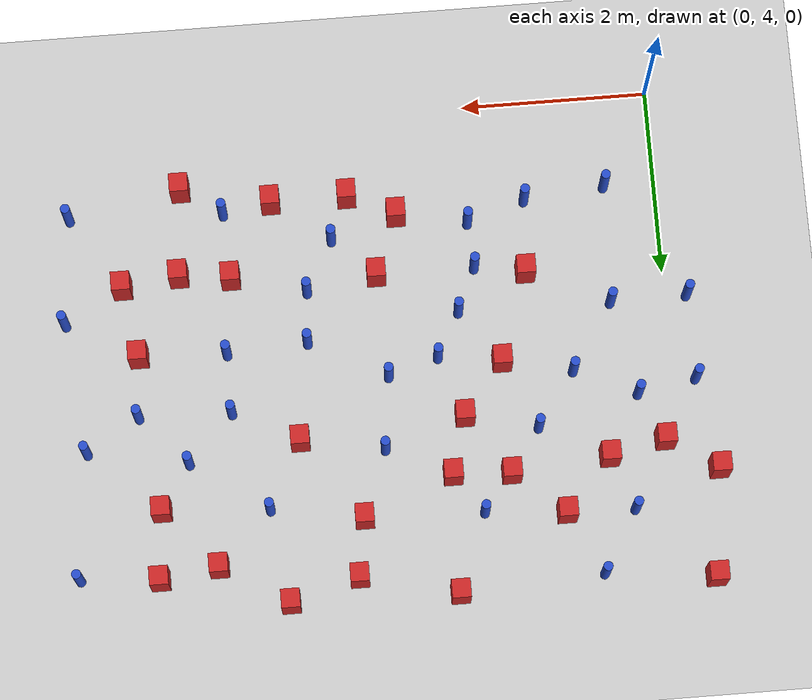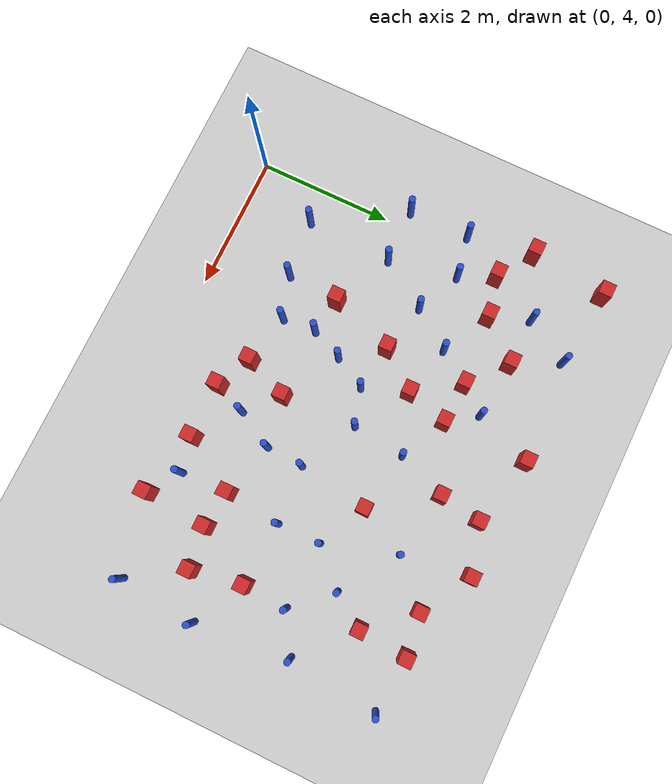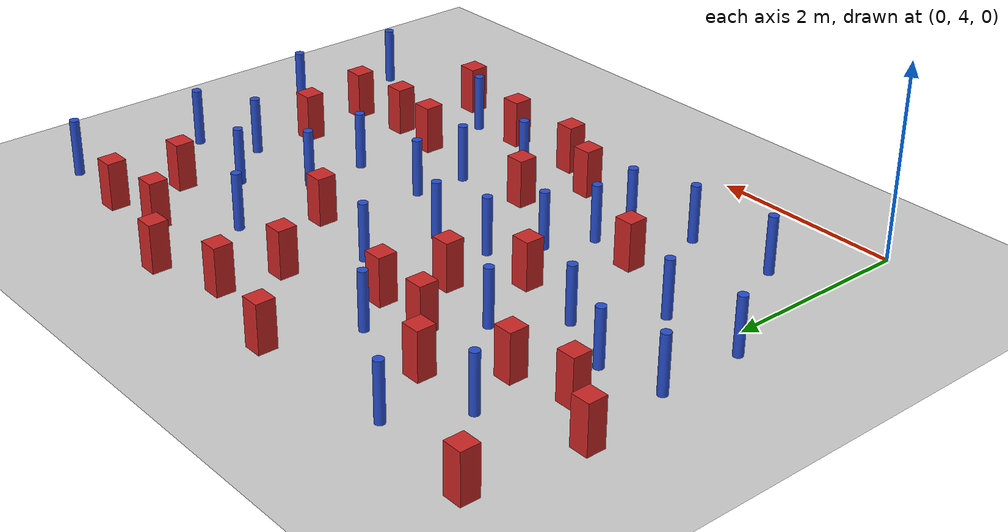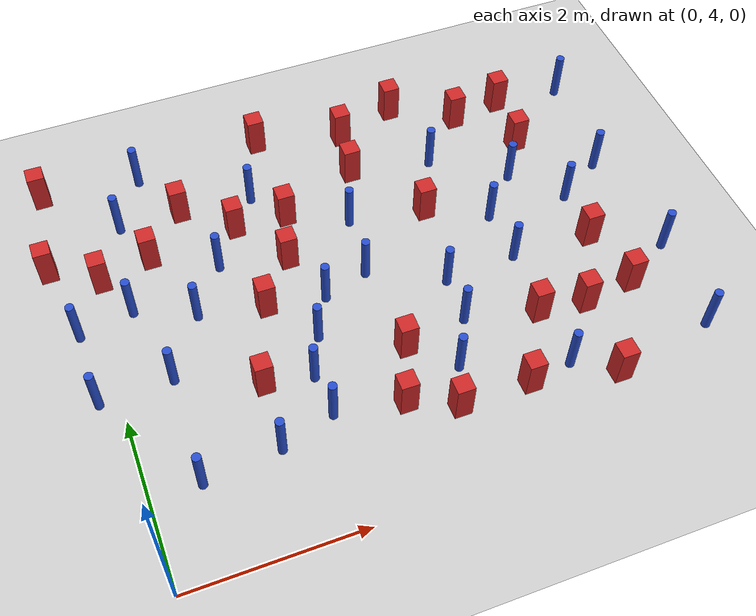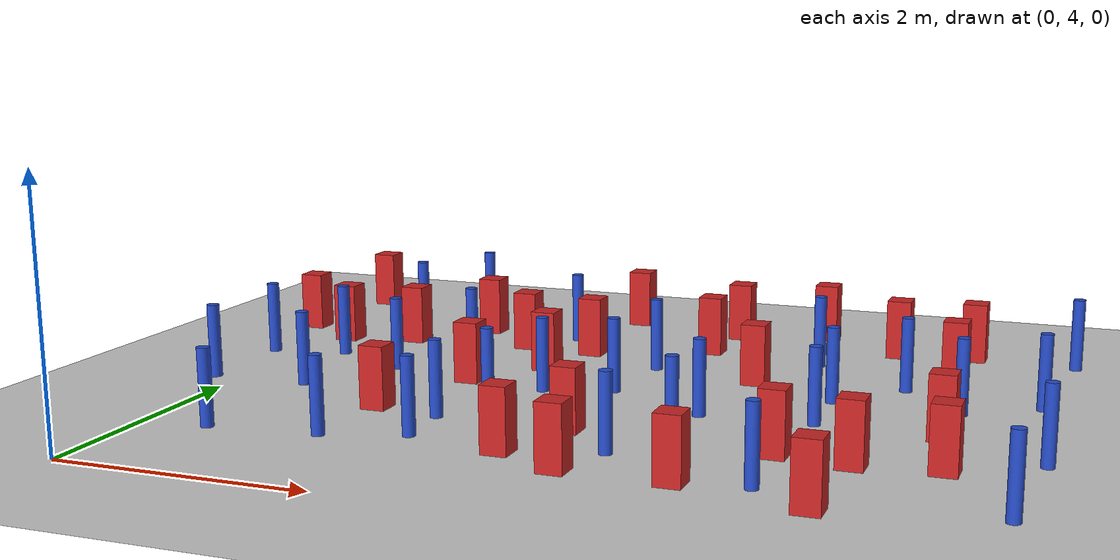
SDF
<sdf version="1.6">
 <world name="default">
  <model name="ground_plane">
   <static>1</static>
   <link name="link">
    <collision name="collision">
     <geometry><plane><normal>0 0 1</normal><size>100 100</size></plane></geometry>
     <surface><friction><ode><mu>100</mu><mu2>50</mu2></ode></friction></surface>
    </collision>
    <visual name="visual">
     <cast_shadows>0</cast_shadows>
     <geometry><plane><normal>0 0 1</normal><size>100 100</size></plane></geometry>
     <material>
      <ambient>1.0 1.0 1.0 1.0</ambient>
      <diffuse>0.8 0.8 0.8 1.0</diffuse>
      <specular>0.01 0.01 0.01 1.000000</specular>
     </material>
    </visual>
   </link>
  </model>
  <model name="pole_obstacle0">
   <static>true</static>
   <pose>-0.228434061934 6.29204529232 7.38925637345e-09 -8.47170692799e-08 1.2497676507e-08 -1.74513093018e-07</pose>
   <link name="link">
    <pose>0 0 0.3 0 -0 0</pose>
    <inertial>
     <mass>1</mass>
     <inertia><ixx>0.145833</ixx><ixy>0</ixy><ixz>0</ixz><iyy>0.145833</iyy><iyz>0</iyz><izz>0.125</izz></inertia>
    </inertial>
    <collision name="collision">
     <geometry><cylinder><radius>0.05</radius><length>.6</length></cylinder></geometry>
    </collision>
    <visual name="visual">
     <geometry><cylinder><radius>0.05</radius><length>.6</length></cylinder></geometry>
     <material>
      <script><name>Gazebo/Blue</name><uri>file://media/materials/scripts/gazebo.material</uri></script>
     </material>
    </visual>
   </link>
  </model>
  <model name="pole_obstacle6">
   <static>true</static>
   <pose>2.22442728239 6.29119405473 7.38925637345e-09 -8.47170692798e-08 1.24976765033e-08 -1.74513093019e-07</pose>
   <link name="link">
    <pose>0 0 0.3 0 -0 0</pose>
    <inertial>
     <mass>1</mass>
     <inertia><ixx>0.145833</ixx><ixy>0</ixy><ixz>0</ixz><iyy>0.145833</iyy><iyz>0</iyz><izz>0.125</izz></inertia>
    </inertial>
    <collision name="collision">
     <geometry><cylinder><radius>0.05</radius><length>.6</length></cylinder></geometry>
    </collision>
    <visual name="visual">
     <geometry><cylinder><radius>0.05</radius><length>.6</length></cylinder></geometry>
     <material>
      <script><name>Gazebo/Blue</name><uri>file://media/materials/scripts/gazebo.material</uri></script>
     </material>
    </visual>
   </link>
  </model>
  <model name="pole_obstacle7">
   <static>true</static>
   <pose>3.82240901728 5.94968930159 7.38925637345e-09 -8.47170692798e-08 1.24976765033e-08 -1.74513093019e-07</pose>
   <link name="link">
    <pose>0 0 0.3 0 -0 0</pose>
    <inertial>
     <mass>1</mass>
     <inertia><ixx>0.145833</ixx><ixy>0</ixy><ixz>0</ixz><iyy>0.145833</iyy><iyz>0</iyz><izz>0.125</izz></inertia>
    </inertial>
    <collision name="collision">
     <geometry><cylinder><radius>0.05</radius><length>.6</length></cylinder></geometry>
    </collision>
    <visual name="visual">
     <geometry><cylinder><radius>0.05</radius><length>.6</length></cylinder></geometry>
     <material>
      <script><name>Gazebo/Blue</name><uri>file://media/materials/scripts/gazebo.material</uri></script>
     </material>
    </visual>
   </link>
  </model>
  <model name="square_post_obstacle15">
   <static>true</static>
   <pose>3.4902615827 9.0665282632 1.91545236811e-07 -7.35059704564e-06 1.12565212e-07 2.39332434364e-05</pose>
   <link name="link">
    <pose>0 0 0.25 0 -0 0</pose>
    <inertial>
     <mass>100</mass>
     <inertia>
      <ixx>0.166667</ixx>
      <ixy>0</ixy>
      <ixz>0</ixz>
      <iyy>0.166667</iyy>
      <iyz>0</iyz>
      <izz>0.166667</izz>
     </inertia>
    </inertial>
    <collision name="collision"><geometry><box><size>.2 .2 .5</size></box></geometry></collision>
    <visual name="visual">
     <geometry><box><size>.2 .2 .5</size></box></geometry>
     <material>
      <script><name>Gazebo/Red</name><uri>file://media/materials/scripts/gazebo.material</uri></script>
     </material>
    </visual>
   </link>
  </model>
  <model name="pole_obstacle21">
   <static>true</static>
   <pose>5.19978586766 7.72300036047 7.38925637345e-09 -8.47170692796e-08 1.24976764786e-08 -1.74513093032e-07</pose>
   <link name="link">
    <pose>0 0 0.3 0 -0 0</pose>
    <inertial>
     <mass>1</mass>
     <inertia><ixx>0.145833</ixx><ixy>0</ixy><ixz>0</ixz><iyy>0.145833</iyy><iyz>0</iyz><izz>0.125</izz></inertia>
    </inertial>
    <collision name="collision">
     <geometry><cylinder><radius>0.05</radius><length>.6</length></cylinder></geometry>
    </collision>
    <visual name="visual">
     <geometry><cylinder><radius>0.05</radius><length>.6</length></cylinder></geometry>
     <material>
      <script><name>Gazebo/Blue</name><uri>file://media/materials/scripts/gazebo.material</uri></script>
     </material>
    </visual>
   </link>
  </model>
  <model name="pole_obstacle30">
   <static>true</static>
   <pose>6.32094249116 4.95644401113 7.38925637345e-09 -8.47170692796e-08 1.24976764786e-08 -1.74513093032e-07</pose>
   <link name="link">
    <pose>0 0 0.3 0 -0 0</pose>
    <inertial>
     <mass>1</mass>
     <inertia><ixx>0.145833</ixx><ixy>0</ixy><ixz>0</ixz><iyy>0.145833</iyy><iyz>0</iyz><izz>0.125</izz></inertia>
    </inertial>
    <collision name="collision">
     <geometry><cylinder><radius>0.05</radius><length>.6</length></cylinder></geometry>
    </collision>
    <visual name="visual">
     <geometry><cylinder><radius>0.05</radius><length>.6</length></cylinder></geometry>
     <material>
      <script><name>Gazebo/Blue</name><uri>file://media/materials/scripts/gazebo.material</uri></script>
     </material>
    </visual>
   </link>
  </model>
  <model name="square_post_obstacle23">
   <static>true</static>
   <pose>-0.246923038685 9.34110351262 1.91545236811e-07 -7.35059704564e-06 1.12565212e-07 2.39332434364e-05</pose>
   <link name="link">
    <pose>0 0 0.25 0 -0 0</pose>
    <inertial>
     <mass>100</mass>
     <inertia>
      <ixx>0.166667</ixx>
      <ixy>0</ixy>
      <ixz>0</ixz>
      <iyy>0.166667</iyy>
      <iyz>0</iyz>
      <izz>0.166667</izz>
     </inertia>
    </inertial>
    <collision name="collision"><geometry><box><size>.2 .2 .5</size></box></geometry></collision>
    <visual name="visual">
     <geometry><box><size>.2 .2 .5</size></box></geometry>
     <material>
      <script><name>Gazebo/Red</name><uri>file://media/materials/scripts/gazebo.material</uri></script>
     </material>
    </visual>
   </link>
  </model>
  <model name="square_post_obstacle27">
   <static>true</static>
   <pose>5.66125479805 6.52521181551 1.91545236811e-07 -7.35059704564e-06 1.12565212e-07 2.39332434364e-05</pose>
   <link name="link">
    <pose>0 0 0.25 0 -0 0</pose>
    <inertial>
     <mass>100</mass>
     <inertia>
      <ixx>0.166667</ixx>
      <ixy>0</ixy>
      <ixz>0</ixz>
      <iyy>0.166667</iyy>
      <iyz>0</iyz>
      <izz>0.166667</izz>
     </inertia>
    </inertial>
    <collision name="collision"><geometry><box><size>.2 .2 .5</size></box></geometry></collision>
    <visual name="visual">
     <geometry><box><size>.2 .2 .5</size></box></geometry>
     <material>
      <script><name>Gazebo/Red</name><uri>file://media/materials/scripts/gazebo.material</uri></script>
     </material>
    </visual>
   </link>
  </model>
  <model name="pole_obstacle33">
   <static>true</static>
   <pose>6.27313689731 7.53158005232 7.38925637345e-09 -8.47170692796e-08 1.24976764786e-08 -1.74513093032e-07</pose>
   <link name="link">
    <pose>0 0 0.3 0 -0 0</pose>
    <inertial>
     <mass>1</mass>
     <inertia><ixx>0.145833</ixx><ixy>0</ixy><ixz>0</ixz><iyy>0.145833</iyy><iyz>0</iyz><izz>0.125</izz></inertia>
    </inertial>
    <collision name="collision">
     <geometry><cylinder><radius>0.05</radius><length>.6</length></cylinder></geometry>
    </collision>
    <visual name="visual">
     <geometry><cylinder><radius>0.05</radius><length>.6</length></cylinder></geometry>
     <material>
      <script><name>Gazebo/Blue</name><uri>file://media/materials/scripts/gazebo.material</uri></script>
     </material>
    </visual>
   </link>
  </model>
  <model name="pole_obstacle37">
   <static>true</static>
   <pose>4.72249444627 6.56538603166 7.38925637345e-09 -8.47170692796e-08 1.24976764786e-08 -1.74513093032e-07</pose>
   <link name="link">
    <pose>0 0 0.3 0 -0 0</pose>
    <inertial>
     <mass>1</mass>
     <inertia><ixx>0.145833</ixx><ixy>0</ixy><ixz>0</ixz><iyy>0.145833</iyy><iyz>0</iyz><izz>0.125</izz></inertia>
    </inertial>
    <collision name="collision">
     <geometry><cylinder><radius>0.05</radius><length>.6</length></cylinder></geometry>
    </collision>
    <visual name="visual">
     <geometry><cylinder><radius>0.05</radius><length>.6</length></cylinder></geometry>
     <material>
      <script><name>Gazebo/Blue</name><uri>file://media/materials/scripts/gazebo.material</uri></script>
     </material>
    </visual>
   </link>
  </model>
  <model name="square_post_obstacle36">
   <static>true</static>
   <pose>4.62744434385 5.74198896788 1.91545236811e-07 -7.35059704564e-06 1.12565212e-07 2.39332434364e-05</pose>
   <link name="link">
    <pose>0 0 0.25 0 -0 0</pose>
    <inertial>
     <mass>100</mass>
     <inertia>
      <ixx>0.166667</ixx>
      <ixy>0</ixy>
      <ixz>0</ixz>
      <iyy>0.166667</iyy>
      <iyz>0</iyz>
      <izz>0.166667</izz>
     </inertia>
    </inertial>
    <collision name="collision"><geometry><box><size>.2 .2 .5</size></box></geometry></collision>
    <visual name="visual">
     <geometry><box><size>.2 .2 .5</size></box></geometry>
     <material>
      <script><name>Gazebo/Red</name><uri>file://media/materials/scripts/gazebo.material</uri></script>
     </material>
    </visual>
   </link>
  </model>
  <model name="pole_obstacle49">
   <static>true</static>
   <pose>3.02220276848 6.93913712863 7.38925637345e-09 -8.47170692798e-08 1.24976765033e-08 -1.74513093019e-07</pose>
   <link name="link">
    <pose>0 0 0.3 0 -0 0</pose>
    <inertial>
     <mass>1</mass>
     <inertia><ixx>0.145833</ixx><ixy>0</ixy><ixz>0</ixz><iyy>0.145833</iyy><iyz>0</iyz><izz>0.125</izz></inertia>
    </inertial>
    <collision name="collision">
     <geometry><cylinder><radius>0.05</radius><length>.6</length></cylinder></geometry>
    </collision>
    <visual name="visual">
     <geometry><cylinder><radius>0.05</radius><length>.6</length></cylinder></geometry>
     <material>
      <script><name>Gazebo/Blue</name><uri>file://media/materials/scripts/gazebo.material</uri></script>
     </material>
    </visual>
   </link>
  </model>
  <model name="square_post_obstacle41">
   <static>true</static>
   <pose>4.1457174353 4.93657305186 1.91545236811e-07 -7.35059704564e-06 1.12565212e-07 2.39332434364e-05</pose>
   <link name="link">
    <pose>0 0 0.25 0 -0 0</pose>
    <inertial>
     <mass>100</mass>
     <inertia>
      <ixx>0.166667</ixx>
      <ixy>0</ixy>
      <ixz>0</ixz>
      <iyy>0.166667</iyy>
      <iyz>0</iyz>
      <izz>0.166667</izz>
     </inertia>
    </inertial>
    <collision name="collision"><geometry><box><size>.2 .2 .5</size></box></geometry></collision>
    <visual name="visual">
     <geometry><box><size>.2 .2 .5</size></box></geometry>
     <material>
      <script><name>Gazebo/Red</name><uri>file://media/materials/scripts/gazebo.material</uri></script>
     </material>
    </visual>
   </link>
  </model>
  <model name="pole_obstacle66">
   <static>true</static>
   <pose>2.11957843777 8.47835563141 7.38925637345e-09 -8.47170692793e-08 1.24976764408e-08 -1.74513093041e-07</pose>
   <link name="link">
    <pose>0 0 0.3 0 -0 0</pose>
    <inertial>
     <mass>1</mass>
     <inertia><ixx>0.145833</ixx><ixy>0</ixy><ixz>0</ixz><iyy>0.145833</iyy><iyz>0</iyz><izz>0.125</izz></inertia>
    </inertial>
    <collision name="collision">
     <geometry><cylinder><radius>0.05</radius><length>.6</length></cylinder></geometry>
    </collision>
    <visual name="visual">
     <geometry><cylinder><radius>0.05</radius><length>.6</length></cylinder></geometry>
     <material>
      <script><name>Gazebo/Blue</name><uri>file://media/materials/scripts/gazebo.material</uri></script>
     </material>
    </visual>
   </link>
  </model>
  <model name="square_post_obstacle54">
   <static>true</static>
   <pose>2.24942483633 7.42923930319 1.91545236811e-07 -7.35059704564e-06 1.12565212e-07 2.39332434364e-05</pose>
   <link name="link">
    <pose>0 0 0.25 0 -0 0</pose>
    <inertial>
     <mass>100</mass>
     <inertia>
      <ixx>0.166667</ixx>
      <ixy>0</ixy>
      <ixz>0</ixz>
      <iyy>0.166667</iyy>
      <iyz>0</iyz>
      <izz>0.166667</izz>
     </inertia>
    </inertial>
    <collision name="collision"><geometry><box><size>.2 .2 .5</size></box></geometry></collision>
    <visual name="visual">
     <geometry><box><size>.2 .2 .5</size></box></geometry>
     <material>
      <script><name>Gazebo/Red</name><uri>file://media/materials/scripts/gazebo.material</uri></script>
     </material>
    </visual>
   </link>
  </model>
  <model name="pole_obstacle72">
   <static>true</static>
   <pose>0.91410161567 9.22481058248 7.38925637345e-09 -8.47170692797e-08 1.249767648e-08 -1.74513093032e-07</pose>
   <link name="link">
    <pose>0 0 0.3 0 -0 0</pose>
    <inertial>
     <mass>1</mass>
     <inertia><ixx>0.145833</ixx><ixy>0</ixy><ixz>0</ixz><iyy>0.145833</iyy><iyz>0</iyz><izz>0.125</izz></inertia>
    </inertial>
    <collision name="collision">
     <geometry><cylinder><radius>0.05</radius><length>.6</length></cylinder></geometry>
    </collision>
    <visual name="visual">
     <geometry><cylinder><radius>0.05</radius><length>.6</length></cylinder></geometry>
     <material>
      <script><name>Gazebo/Blue</name><uri>file://media/materials/scripts/gazebo.material</uri></script>
     </material>
    </visual>
   </link>
  </model>
  <model name="square_post_obstacle63">
   <static>true</static>
   <pose>1.25911024001 8.54830756173 1.91545236811e-07 -7.35059704564e-06 1.12565212e-07 2.39332434364e-05</pose>
   <link name="link">
    <pose>0 0 0.25 0 -0 0</pose>
    <inertial>
     <mass>100</mass>
     <inertia>
      <ixx>0.166667</ixx>
      <ixy>0</ixy>
      <ixz>0</ixz>
      <iyy>0.166667</iyy>
      <iyz>0</iyz>
      <izz>0.166667</izz>
     </inertia>
    </inertial>
    <collision name="collision"><geometry><box><size>.2 .2 .5</size></box></geometry></collision>
    <visual name="visual">
     <geometry><box><size>.2 .2 .5</size></box></geometry>
     <material>
      <script><name>Gazebo/Red</name><uri>file://media/materials/scripts/gazebo.material</uri></script>
     </material>
    </visual>
   </link>
  </model>
  <model name="pole_obstacle75">
   <static>true</static>
   <pose>6.4252347532 6.11538286575 7.38925637345e-09 -8.47170692796e-08 1.24976764786e-08 -1.74513093032e-07</pose>
   <link name="link">
    <pose>0 0 0.3 0 -0 0</pose>
    <inertial>
     <mass>1</mass>
     <inertia><ixx>0.145833</ixx><ixy>0</ixy><ixz>0</ixz><iyy>0.145833</iyy><iyz>0</iyz><izz>0.125</izz></inertia>
    </inertial>
    <collision name="collision">
     <geometry><cylinder><radius>0.05</radius><length>.6</length></cylinder></geometry>
    </collision>
    <visual name="visual">
     <geometry><cylinder><radius>0.05</radius><length>.6</length></cylinder></geometry>
     <material>
      <script><name>Gazebo/Blue</name><uri>file://media/materials/scripts/gazebo.material</uri></script>
     </material>
    </visual>
   </link>
  </model>
  <model name="square_post_obstacle68">
   <static>true</static>
   <pose>3.0713135136 5.82297115582 1.91545236811e-07 -7.35059704564e-06 1.12565212e-07 2.39332434364e-05</pose>
   <link name="link">
    <pose>0 0 0.25 0 -0 0</pose>
    <inertial>
     <mass>100</mass>
     <inertia>
      <ixx>0.166667</ixx>
      <ixy>0</ixy>
      <ixz>0</ixz>
      <iyy>0.166667</iyy>
      <iyz>0</iyz>
      <izz>0.166667</izz>
     </inertia>
    </inertial>
    <collision name="collision"><geometry><box><size>.2 .2 .5</size></box></geometry></collision>
    <visual name="visual">
     <geometry><box><size>.2 .2 .5</size></box></geometry>
     <material>
      <script><name>Gazebo/Red</name><uri>file://media/materials/scripts/gazebo.material</uri></script>
     </material>
    </visual>
   </link>
  </model>
  <model name="pole_obstacle82">
   <static>true</static>
   <pose>0.592543549288 6.31140123082 7.38925637345e-09 -8.471706928e-08 1.24976765086e-08 -1.74513093015e-07</pose>
   <link name="link">
    <pose>0 0 0.3 0 -0 0</pose>
    <inertial>
     <mass>1</mass>
     <inertia><ixx>0.145833</ixx><ixy>0</ixy><ixz>0</ixz><iyy>0.145833</iyy><iyz>0</iyz><izz>0.125</izz></inertia>
    </inertial>
    <collision name="collision">
     <geometry><cylinder><radius>0.05</radius><length>.6</length></cylinder></geometry>
    </collision>
    <visual name="visual">
     <geometry><cylinder><radius>0.05</radius><length>.6</length></cylinder></geometry>
     <material>
      <script><name>Gazebo/Blue</name><uri>file://media/materials/scripts/gazebo.material</uri></script>
     </material>
    </visual>
   </link>
  </model>
  <model name="pole_obstacle90">
   <static>true</static>
   <pose>1.05649509037 7.02940043793 7.38925637345e-09 -8.47170692799e-08 1.24976765033e-08 -1.74513093018e-07</pose>
   <link name="link">
    <pose>0 0 0.3 0 -0 0</pose>
    <inertial>
     <mass>1</mass>
     <inertia><ixx>0.145833</ixx><ixy>0</ixy><ixz>0</ixz><iyy>0.145833</iyy><iyz>0</iyz><izz>0.125</izz></inertia>
    </inertial>
    <collision name="collision">
     <geometry><cylinder><radius>0.05</radius><length>.6</length></cylinder></geometry>
    </collision>
    <visual name="visual">
     <geometry><cylinder><radius>0.05</radius><length>.6</length></cylinder></geometry>
     <material>
      <script><name>Gazebo/Blue</name><uri>file://media/materials/scripts/gazebo.material</uri></script>
     </material>
    </visual>
   </link>
  </model>
  <model name="square_post_obstacle86">
   <static>true</static>
   <pose>0.755686000077 7.98319269294 1.91545236811e-07 -7.35059704564e-06 1.12565212e-07 2.39332434364e-05</pose>
   <link name="link">
    <pose>0 0 0.25 0 -0 0</pose>
    <inertial>
     <mass>100</mass>
     <inertia>
      <ixx>0.166667</ixx>
      <ixy>0</ixy>
      <ixz>0</ixz>
      <iyy>0.166667</iyy>
      <iyz>0</iyz>
      <izz>0.166667</izz>
     </inertia>
    </inertial>
    <collision name="collision"><geometry><box><size>.2 .2 .5</size></box></geometry></collision>
    <visual name="visual">
     <geometry><box><size>.2 .2 .5</size></box></geometry>
     <material>
      <script><name>Gazebo/Red</name><uri>file://media/materials/scripts/gazebo.material</uri></script>
     </material>
    </visual>
   </link>
  </model>
  <model name="square_post_obstacle87">
   <static>true</static>
   <pose>3.32496646519 4.93010450857 1.91545236811e-07 -7.35059704564e-06 1.12565212e-07 2.39332434364e-05</pose>
   <link name="link">
    <pose>0 0 0.25 0 -0 0</pose>
    <inertial>
     <mass>100</mass>
     <inertia>
      <ixx>0.166667</ixx>
      <ixy>0</ixy>
      <ixz>0</ixz>
      <iyy>0.166667</iyy>
      <iyz>0</iyz>
      <izz>0.166667</izz>
     </inertia>
    </inertial>
    <collision name="collision"><geometry><box><size>.2 .2 .5</size></box></geometry></collision>
    <visual name="visual">
     <geometry><box><size>.2 .2 .5</size></box></geometry>
     <material>
      <script><name>Gazebo/Red</name><uri>file://media/materials/scripts/gazebo.material</uri></script>
     </material>
    </visual>
   </link>
  </model>
  <model name="square_post_obstacle93">
   <static>true</static>
   <pose>5.79150118543 5.76071813293 1.91545236811e-07 -7.35059704564e-06 1.12565212e-07 2.39332434364e-05</pose>
   <link name="link">
    <pose>0 0 0.25 0 -0 0</pose>
    <inertial>
     <mass>100</mass>
     <inertia>
      <ixx>0.166667</ixx>
      <ixy>0</ixy>
      <ixz>0</ixz>
      <iyy>0.166667</iyy>
      <iyz>0</iyz>
      <izz>0.166667</izz>
     </inertia>
    </inertial>
    <collision name="collision"><geometry><box><size>.2 .2 .5</size></box></geometry></collision>
    <visual name="visual">
     <geometry><box><size>.2 .2 .5</size></box></geometry>
     <material>
      <script><name>Gazebo/Red</name><uri>file://media/materials/scripts/gazebo.material</uri></script>
     </material>
    </visual>
   </link>
  </model>
  <model name="square_post_obstacle95">
   <static>true</static>
   <pose>4.22800711547 9.28417637888 1.91545236811e-07 -7.35059704564e-06 1.12565212e-07 2.39332434364e-05</pose>
   <link name="link">
    <pose>0 0 0.25 0 -0 0</pose>
    <inertial>
     <mass>100</mass>
     <inertia>
      <ixx>0.166667</ixx>
      <ixy>0</ixy>
      <ixz>0</ixz>
      <iyy>0.166667</iyy>
      <iyz>0</iyz>
      <izz>0.166667</izz>
     </inertia>
    </inertial>
    <collision name="collision"><geometry><box><size>.2 .2 .5</size></box></geometry></collision>
    <visual name="visual">
     <geometry><box><size>.2 .2 .5</size></box></geometry>
     <material>
      <script><name>Gazebo/Red</name><uri>file://media/materials/scripts/gazebo.material</uri></script>
     </material>
    </visual>
   </link>
  </model>
  <model name="pole_obstacle102">
   <static>true</static>
   <pose>1.4754681532 7.61173434909 7.38925637345e-09 -8.47170692799e-08 1.24976765033e-08 -1.74513093018e-07</pose>
   <link name="link">
    <pose>0 0 0.3 0 -0 0</pose>
    <inertial>
     <mass>1</mass>
     <inertia><ixx>0.145833</ixx><ixy>0</ixy><ixz>0</ixz><iyy>0.145833</iyy><iyz>0</iyz><izz>0.125</izz></inertia>
    </inertial>
    <collision name="collision">
     <geometry><cylinder><radius>0.05</radius><length>.6</length></cylinder></geometry>
    </collision>
    <visual name="visual">
     <geometry><cylinder><radius>0.05</radius><length>.6</length></cylinder></geometry>
     <material>
      <script><name>Gazebo/Blue</name><uri>file://media/materials/scripts/gazebo.material</uri></script>
     </material>
    </visual>
   </link>
  </model>
  <model name="square_post_obstacle99">
   <static>true</static>
   <pose>2.44863910565 9.31854969391 1.91545236811e-07 -7.35059704564e-06 1.12565212e-07 2.39332434364e-05</pose>
   <link name="link">
    <pose>0 0 0.25 0 -0 0</pose>
    <inertial>
     <mass>100</mass>
     <inertia>
      <ixx>0.166667</ixx>
      <ixy>0</ixy>
      <ixz>0</ixz>
      <iyy>0.166667</iyy>
      <iyz>0</iyz>
      <izz>0.166667</izz>
     </inertia>
    </inertial>
    <collision name="collision"><geometry><box><size>.2 .2 .5</size></box></geometry></collision>
    <visual name="visual">
     <geometry><box><size>.2 .2 .5</size></box></geometry>
     <material>
      <script><name>Gazebo/Red</name><uri>file://media/materials/scripts/gazebo.material</uri></script>
     </material>
    </visual>
   </link>
  </model>
  <model name="square_post_obstacle105">
   <static>true</static>
   <pose>4.00963625147 7.56278724942 1.91545236811e-07 -7.35059704564e-06 1.12565212e-07 2.39332434364e-05</pose>
   <link name="link">
    <pose>0 0 0.25 0 -0 0</pose>
    <inertial>
     <mass>100</mass>
     <inertia>
      <ixx>0.166667</ixx>
      <ixy>0</ixy>
      <ixz>0</ixz>
      <iyy>0.166667</iyy>
      <iyz>0</iyz>
      <izz>0.166667</izz>
     </inertia>
    </inertial>
    <collision name="collision"><geometry><box><size>.2 .2 .5</size></box></geometry></collision>
    <visual name="visual">
     <geometry><box><size>.2 .2 .5</size></box></geometry>
     <material>
      <script><name>Gazebo/Red</name><uri>file://media/materials/scripts/gazebo.material</uri></script>
     </material>
    </visual>
   </link>
  </model>
  <model name="pole_obstacle115">
   <static>true</static>
   <pose>0.389413845031 7.32882767599 7.38925637345e-09 -8.471706928e-08 1.24976765079e-08 -1.74513093015e-07</pose>
   <link name="link">
    <pose>0 0 0.3 0 -0 0</pose>
    <inertial>
     <mass>1</mass>
     <inertia><ixx>0.145833</ixx><ixy>0</ixy><ixz>0</ixz><iyy>0.145833</iyy><iyz>0</iyz><izz>0.125</izz></inertia>
    </inertial>
    <collision name="collision">
     <geometry><cylinder><radius>0.05</radius><length>.6</length></cylinder></geometry>
    </collision>
    <visual name="visual">
     <geometry><cylinder><radius>0.05</radius><length>.6</length></cylinder></geometry>
     <material>
      <script><name>Gazebo/Blue</name><uri>file://media/materials/scripts/gazebo.material</uri></script>
     </material>
    </visual>
   </link>
  </model>
  <model name="square_post_obstacle113">
   <static>true</static>
   <pose>2.42501197291 8.05073850662 1.91545236811e-07 -7.35059704564e-06 1.12565212e-07 2.39332434364e-05</pose>
   <link name="link">
    <pose>0 0 0.25 0 -0 0</pose>
    <inertial>
     <mass>100</mass>
     <inertia>
      <ixx>0.166667</ixx>
      <ixy>0</ixy>
      <ixz>0</ixz>
      <iyy>0.166667</iyy>
      <iyz>0</iyz>
      <izz>0.166667</izz>
     </inertia>
    </inertial>
    <collision name="collision"><geometry><box><size>.2 .2 .5</size></box></geometry></collision>
    <visual name="visual">
     <geometry><box><size>.2 .2 .5</size></box></geometry>
     <material>
      <script><name>Gazebo/Red</name><uri>file://media/materials/scripts/gazebo.material</uri></script>
     </material>
    </visual>
   </link>
  </model>
  <model name="square_post_obstacle115">
   <static>true</static>
   <pose>1.80678591164 6.86659056816 1.91545236811e-07 -7.35059704564e-06 1.12565212e-07 2.39332434364e-05</pose>
   <link name="link">
    <pose>0 0 0.25 0 -0 0</pose>
    <inertial>
     <mass>100</mass>
     <inertia>
      <ixx>0.166667</ixx>
      <ixy>0</ixy>
      <ixz>0</ixz>
      <iyy>0.166667</iyy>
      <iyz>0</iyz>
      <izz>0.166667</izz>
     </inertia>
    </inertial>
    <collision name="collision"><geometry><box><size>.2 .2 .5</size></box></geometry></collision>
    <visual name="visual">
     <geometry><box><size>.2 .2 .5</size></box></geometry>
     <material>
      <script><name>Gazebo/Red</name><uri>file://media/materials/scripts/gazebo.material</uri></script>
     </material>
    </visual>
   </link>
  </model>
  <model name="pole_obstacle127">
   <static>true</static>
   <pose>0.549115388526 5.02407522384 7.38925637345e-09 -8.47170692799e-08 1.24976765073e-08 -1.74513093015e-07</pose>
   <link name="link">
    <pose>0 0 0.3 0 -0 0</pose>
    <inertial>
     <mass>1</mass>
     <inertia><ixx>0.145833</ixx><ixy>0</ixy><ixz>0</ixz><iyy>0.145833</iyy><iyz>0</iyz><izz>0.125</izz></inertia>
    </inertial>
    <collision name="collision">
     <geometry><cylinder><radius>0.05</radius><length>.6</length></cylinder></geometry>
    </collision>
    <visual name="visual">
     <geometry><cylinder><radius>0.05</radius><length>.6</length></cylinder></geometry>
     <material>
      <script><name>Gazebo/Blue</name><uri>file://media/materials/scripts/gazebo.material</uri></script>
     </material>
    </visual>
   </link>
  </model>
  <model name="pole_obstacle142">
   <static>true</static>
   <pose>4.3768001244 8.28113955865 7.38925637345e-09 -8.471706928e-08 1.24976765081e-08 -1.74513093015e-07</pose>
   <link name="link">
    <pose>0 0 0.3 0 -0 0</pose>
    <inertial>
     <mass>1</mass>
     <inertia><ixx>0.145833</ixx><ixy>0</ixy><ixz>0</ixz><iyy>0.145833</iyy><iyz>0</iyz><izz>0.125</izz></inertia>
    </inertial>
    <collision name="collision">
     <geometry><cylinder><radius>0.05</radius><length>.6</length></cylinder></geometry>
    </collision>
    <visual name="visual">
     <geometry><cylinder><radius>0.05</radius><length>.6</length></cylinder></geometry>
     <material>
      <script><name>Gazebo/Blue</name><uri>file://media/materials/scripts/gazebo.material</uri></script>
     </material>
    </visual>
   </link>
  </model>
  <model name="square_post_obstacle139">
   <static>true</static>
   <pose>2.81119544253 5.17713152289 1.91545236811e-07 -7.35059704564e-06 1.12565212e-07 2.39332434364e-05</pose>
   <link name="link">
    <pose>0 0 0.25 0 -0 0</pose>
    <inertial>
     <mass>100</mass>
     <inertia>
      <ixx>0.166667</ixx>
      <ixy>0</ixy>
      <ixz>0</ixz>
      <iyy>0.166667</iyy>
      <iyz>0</iyz>
      <izz>0.166667</izz>
     </inertia>
    </inertial>
    <collision name="collision"><geometry><box><size>.2 .2 .5</size></box></geometry></collision>
    <visual name="visual">
     <geometry><box><size>.2 .2 .5</size></box></geometry>
     <material>
      <script><name>Gazebo/Red</name><uri>file://media/materials/scripts/gazebo.material</uri></script>
     </material>
    </visual>
   </link>
  </model>
  <model name="pole_obstacle148">
   <static>true</static>
   <pose>3.11664576046 7.72517405072 7.38925637345e-09 -8.47170692798e-08 1.24976765033e-08 -1.74513093019e-07</pose>
   <link name="link">
    <pose>0 0 0.3 0 -0 0</pose>
    <inertial>
     <mass>1</mass>
     <inertia><ixx>0.145833</ixx><ixy>0</ixy><ixz>0</ixz><iyy>0.145833</iyy><iyz>0</iyz><izz>0.125</izz></inertia>
    </inertial>
    <collision name="collision">
     <geometry><cylinder><radius>0.05</radius><length>.6</length></cylinder></geometry>
    </collision>
    <visual name="visual">
     <geometry><cylinder><radius>0.05</radius><length>.6</length></cylinder></geometry>
     <material>
      <script><name>Gazebo/Blue</name><uri>file://media/materials/scripts/gazebo.material</uri></script>
     </material>
    </visual>
   </link>
  </model>
  <model name="square_post_obstacle142">
   <static>true</static>
   <pose>5.57928076576 8.93939040851 1.91545236811e-07 -7.35059704564e-06 1.12565212e-07 2.39332434364e-05</pose>
   <link name="link">
    <pose>0 0 0.25 0 -0 0</pose>
    <inertial>
     <mass>100</mass>
     <inertia>
      <ixx>0.166667</ixx>
      <ixy>0</ixy>
      <ixz>0</ixz>
      <iyy>0.166667</iyy>
      <iyz>0</iyz>
      <izz>0.166667</izz>
     </inertia>
    </inertial>
    <collision name="collision"><geometry><box><size>.2 .2 .5</size></box></geometry></collision>
    <visual name="visual">
     <geometry><box><size>.2 .2 .5</size></box></geometry>
     <material>
      <script><name>Gazebo/Red</name><uri>file://media/materials/scripts/gazebo.material</uri></script>
     </material>
    </visual>
   </link>
  </model>
  <model name="pole_obstacle151">
   <static>true</static>
   <pose>6.42021621483 8.88000208915 7.38925637345e-09 -8.471706928e-08 1.24976765081e-08 -1.74513093015e-07</pose>
   <link name="link">
    <pose>0 0 0.3 0 -0 0</pose>
    <inertial>
     <mass>1</mass>
     <inertia><ixx>0.145833</ixx><ixy>0</ixy><ixz>0</ixz><iyy>0.145833</iyy><iyz>0</iyz><izz>0.125</izz></inertia>
    </inertial>
    <collision name="collision">
     <geometry><cylinder><radius>0.05</radius><length>.6</length></cylinder></geometry>
    </collision>
    <visual name="visual">
     <geometry><cylinder><radius>0.05</radius><length>.6</length></cylinder></geometry>
     <material>
      <script><name>Gazebo/Blue</name><uri>file://media/materials/scripts/gazebo.material</uri></script>
     </material>
    </visual>
   </link>
  </model>
  <model name="pole_obstacle155">
   <static>true</static>
   <pose>5.70333443077 7.18434136081 7.38925637345e-09 -8.47170692796e-08 1.24976764786e-08 -1.74513093032e-07</pose>
   <link name="link">
    <pose>0 0 0.3 0 -0 0</pose>
    <inertial>
     <mass>1</mass>
     <inertia><ixx>0.145833</ixx><ixy>0</ixy><ixz>0</ixz><iyy>0.145833</iyy><iyz>0</iyz><izz>0.125</izz></inertia>
    </inertial>
    <collision name="collision">
     <geometry><cylinder><radius>0.05</radius><length>.6</length></cylinder></geometry>
    </collision>
    <visual name="visual">
     <geometry><cylinder><radius>0.05</radius><length>.6</length></cylinder></geometry>
     <material>
      <script><name>Gazebo/Blue</name><uri>file://media/materials/scripts/gazebo.material</uri></script>
     </material>
    </visual>
   </link>
  </model>
  <model name="square_post_obstacle159">
   <static>true</static>
   <pose>5.10828783764 4.72645680395 1.91545236811e-07 -7.35059704564e-06 1.12565212e-07 2.39332434364e-05</pose>
   <link name="link">
    <pose>0 0 0.25 0 -0 0</pose>
    <inertial>
     <mass>100</mass>
     <inertia>
      <ixx>0.166667</ixx>
      <ixy>0</ixy>
      <ixz>0</ixz>
      <iyy>0.166667</iyy>
      <iyz>0</iyz>
      <izz>0.166667</izz>
     </inertia>
    </inertial>
    <collision name="collision"><geometry><box><size>.2 .2 .5</size></box></geometry></collision>
    <visual name="visual">
     <geometry><box><size>.2 .2 .5</size></box></geometry>
     <material>
      <script><name>Gazebo/Red</name><uri>file://media/materials/scripts/gazebo.material</uri></script>
     </material>
    </visual>
   </link>
  </model>
  <model name="pole_obstacle179">
   <static>true</static>
   <pose>0.530662588265 8.56600587903 7.38925637345e-09 -8.47170692797e-08 1.24976764765e-08 -1.74513093034e-07</pose>
   <link name="link">
    <pose>0 0 0.3 0 -0 0</pose>
    <inertial>
     <mass>1</mass>
     <inertia><ixx>0.145833</ixx><ixy>0</ixy><ixz>0</ixz><iyy>0.145833</iyy><iyz>0</iyz><izz>0.125</izz></inertia>
    </inertial>
    <collision name="collision">
     <geometry><cylinder><radius>0.05</radius><length>.6</length></cylinder></geometry>
    </collision>
    <visual name="visual">
     <geometry><cylinder><radius>0.05</radius><length>.6</length></cylinder></geometry>
     <material>
      <script><name>Gazebo/Blue</name><uri>file://media/materials/scripts/gazebo.material</uri></script>
     </material>
    </visual>
   </link>
  </model>
  <model name="square_post_obstacle175">
   <static>true</static>
   <pose>4.95258035101 8.85019602763 1.91545236811e-07 -7.35059704564e-06 1.12565212e-07 2.39332434364e-05</pose>
   <link name="link">
    <pose>0 0 0.25 0 -0 0</pose>
    <inertial>
     <mass>100</mass>
     <inertia>
      <ixx>0.166667</ixx>
      <ixy>0</ixy>
      <ixz>0</ixz>
      <iyy>0.166667</iyy>
      <iyz>0</iyz>
      <izz>0.166667</izz>
     </inertia>
    </inertial>
    <collision name="collision"><geometry><box><size>.2 .2 .5</size></box></geometry></collision>
    <visual name="visual">
     <geometry><box><size>.2 .2 .5</size></box></geometry>
     <material>
      <script><name>Gazebo/Red</name><uri>file://media/materials/scripts/gazebo.material</uri></script>
     </material>
    </visual>
   </link>
  </model>
  <model name="square_post_obstacle177">
   <static>true</static>
   <pose>0.152653046748 7.84405570954 1.91545236811e-07 -7.35059704564e-06 1.12565212e-07 2.39332434364e-05</pose>
   <link name="link">
    <pose>0 0 0.25 0 -0 0</pose>
    <inertial>
     <mass>100</mass>
     <inertia>
      <ixx>0.166667</ixx>
      <ixy>0</ixy>
      <ixz>0</ixz>
      <iyy>0.166667</iyy>
      <iyz>0</iyz>
      <izz>0.166667</izz>
     </inertia>
    </inertial>
    <collision name="collision"><geometry><box><size>.2 .2 .5</size></box></geometry></collision>
    <visual name="visual">
     <geometry><box><size>.2 .2 .5</size></box></geometry>
     <material>
      <script><name>Gazebo/Red</name><uri>file://media/materials/scripts/gazebo.material</uri></script>
     </material>
    </visual>
   </link>
  </model>
  <model name="pole_obstacle180">
   <static>true</static>
   <pose>3.8562991456 6.50851518955 7.38925637345e-09 -8.47170692798e-08 1.24976765033e-08 -1.74513093019e-07</pose>
   <link name="link">
    <pose>0 0 0.3 0 -0 0</pose>
    <inertial>
     <mass>1</mass>
     <inertia><ixx>0.145833</ixx><ixy>0</ixy><ixz>0</ixz><iyy>0.145833</iyy><iyz>0</iyz><izz>0.125</izz></inertia>
    </inertial>
    <collision name="collision">
     <geometry><cylinder><radius>0.05</radius><length>.6</length></cylinder></geometry>
    </collision>
    <visual name="visual">
     <geometry><cylinder><radius>0.05</radius><length>.6</length></cylinder></geometry>
     <material>
      <script><name>Gazebo/Blue</name><uri>file://media/materials/scripts/gazebo.material</uri></script>
     </material>
    </visual>
   </link>
  </model>
  <model name="pole_obstacle183">
   <static>true</static>
   <pose>2.04745090285 5.31632011809 7.38925637345e-09 -8.47170692799e-08 1.24976765014e-08 -1.7451309302e-07</pose>
   <link name="link">
    <pose>0 0 0.3 0 -0 0</pose>
    <inertial>
     <mass>1</mass>
     <inertia><ixx>0.145833</ixx><ixy>0</ixy><ixz>0</ixz><iyy>0.145833</iyy><iyz>0</iyz><izz>0.125</izz></inertia>
    </inertial>
    <collision name="collision">
     <geometry><cylinder><radius>0.05</radius><length>.6</length></cylinder></geometry>
    </collision>
    <visual name="visual">
     <geometry><cylinder><radius>0.05</radius><length>.6</length></cylinder></geometry>
     <material>
      <script><name>Gazebo/Blue</name><uri>file://media/materials/scripts/gazebo.material</uri></script>
     </material>
    </visual>
   </link>
  </model>
  <model name="square_post_obstacle183">
   <static>true</static>
   <pose>5.51814582857 8.20717580043 1.91545236811e-07 -7.35059704564e-06 1.12565212e-07 2.39332434364e-05</pose>
   <link name="link">
    <pose>0 0 0.25 0 -0 0</pose>
    <inertial>
     <mass>100</mass>
     <inertia>
      <ixx>0.166667</ixx>
      <ixy>0</ixy>
      <ixz>0</ixz>
      <iyy>0.166667</iyy>
      <iyz>0</iyz>
      <izz>0.166667</izz>
     </inertia>
    </inertial>
    <collision name="collision"><geometry><box><size>.2 .2 .5</size></box></geometry></collision>
    <visual name="visual">
     <geometry><box><size>.2 .2 .5</size></box></geometry>
     <material>
      <script><name>Gazebo/Red</name><uri>file://media/materials/scripts/gazebo.material</uri></script>
     </material>
    </visual>
   </link>
  </model>
  <model name="pole_obstacle185">
   <static>true</static>
   <pose>-0.237934503164 7.20945664519 7.38925637345e-09 -8.47170692799e-08 1.2497676507e-08 -1.74513093018e-07</pose>
   <link name="link">
    <pose>0 0 0.3 0 -0 0</pose>
    <inertial>
     <mass>1</mass>
     <inertia><ixx>0.145833</ixx><ixy>0</ixy><ixz>0</ixz><iyy>0.145833</iyy><iyz>0</iyz><izz>0.125</izz></inertia>
    </inertial>
    <collision name="collision">
     <geometry><cylinder><radius>0.05</radius><length>.6</length></cylinder></geometry>
    </collision>
    <visual name="visual">
     <geometry><cylinder><radius>0.05</radius><length>.6</length></cylinder></geometry>
     <material>
      <script><name>Gazebo/Blue</name><uri>file://media/materials/scripts/gazebo.material</uri></script>
     </material>
    </visual>
   </link>
  </model>
  <model name="square_post_obstacle192">
   <static>true</static>
   <pose>3.39117497256 8.44553093269 1.91545236811e-07 -7.35059704564e-06 1.12565212e-07 2.39332434364e-05</pose>
   <link name="link">
    <pose>0 0 0.25 0 -0 0</pose>
    <inertial>
     <mass>100</mass>
     <inertia>
      <ixx>0.166667</ixx>
      <ixy>0</ixy>
      <ixz>0</ixz>
      <iyy>0.166667</iyy>
      <iyz>0</iyz>
      <izz>0.166667</izz>
     </inertia>
    </inertial>
    <collision name="collision"><geometry><box><size>.2 .2 .5</size></box></geometry></collision>
    <visual name="visual">
     <geometry><box><size>.2 .2 .5</size></box></geometry>
     <material>
      <script><name>Gazebo/Red</name><uri>file://media/materials/scripts/gazebo.material</uri></script>
     </material>
    </visual>
   </link>
  </model>
  <model name="square_post_obstacle197">
   <static>true</static>
   <pose>5.18044907189 5.67621135281 1.91545236811e-07 -7.35059704564e-06 1.12565212e-07 2.39332434364e-05</pose>
   <link name="link">
    <pose>0 0 0.25 0 -0 0</pose>
    <inertial>
     <mass>100</mass>
     <inertia>
      <ixx>0.166667</ixx>
      <ixy>0</ixy>
      <ixz>0</ixz>
      <iyy>0.166667</iyy>
      <iyz>0</iyz>
      <izz>0.166667</izz>
     </inertia>
    </inertial>
    <collision name="collision"><geometry><box><size>.2 .2 .5</size></box></geometry></collision>
    <visual name="visual">
     <geometry><box><size>.2 .2 .5</size></box></geometry>
     <material>
      <script><name>Gazebo/Red</name><uri>file://media/materials/scripts/gazebo.material</uri></script>
     </material>
    </visual>
   </link>
  </model>
  <model name="pole_obstacle190">
   <static>true</static>
   <pose>1.42123726434 5.1135391091 7.38925637345e-09 -8.47170692799e-08 1.24976765033e-08 -1.74513093018e-07</pose>
   <link name="link">
    <pose>0 0 0.3 0 -0 0</pose>
    <inertial>
     <mass>1</mass>
     <inertia><ixx>0.145833</ixx><ixy>0</ixy><ixz>0</ixz><iyy>0.145833</iyy><iyz>0</iyz><izz>0.125</izz></inertia>
    </inertial>
    <collision name="collision">
     <geometry><cylinder><radius>0.05</radius><length>.6</length></cylinder></geometry>
    </collision>
    <visual name="visual">
     <geometry><cylinder><radius>0.05</radius><length>.6</length></cylinder></geometry>
     <material>
      <script><name>Gazebo/Blue</name><uri>file://media/materials/scripts/gazebo.material</uri></script>
     </material>
    </visual>
   </link>
  </model>
  <model name="square_post_obstacle202">
   <static>true</static>
   <pose>1.80615248424 8.08283694567 1.91545236811e-07 -7.35059704564e-06 1.12565212e-07 2.39332434364e-05</pose>
   <link name="link">
    <pose>0 0 0.25 0 -0 0</pose>
    <inertial>
     <mass>100</mass>
     <inertia>
      <ixx>0.166667</ixx>
      <ixy>0</ixy>
      <ixz>0</ixz>
      <iyy>0.166667</iyy>
      <iyz>0</iyz>
      <izz>0.166667</izz>
     </inertia>
    </inertial>
    <collision name="collision"><geometry><box><size>.2 .2 .5</size></box></geometry></collision>
    <visual name="visual">
     <geometry><box><size>.2 .2 .5</size></box></geometry>
     <material>
      <script><name>Gazebo/Red</name><uri>file://media/materials/scripts/gazebo.material</uri></script>
     </material>
    </visual>
   </link>
  </model>
  <model name="square_post_obstacle204">
   <static>true</static>
   <pose>1.47540956293 5.90716969359 1.91545236811e-07 -7.35059704564e-06 1.12565212e-07 2.39332434364e-05</pose>
   <link name="link">
    <pose>0 0 0.25 0 -0 0</pose>
    <inertial>
     <mass>100</mass>
     <inertia>
      <ixx>0.166667</ixx>
      <ixy>0</ixy>
      <ixz>0</ixz>
      <iyy>0.166667</iyy>
      <iyz>0</iyz>
      <izz>0.166667</izz>
     </inertia>
    </inertial>
    <collision name="collision"><geometry><box><size>.2 .2 .5</size></box></geometry></collision>
    <visual name="visual">
     <geometry><box><size>.2 .2 .5</size></box></geometry>
     <material>
      <script><name>Gazebo/Red</name><uri>file://media/materials/scripts/gazebo.material</uri></script>
     </material>
    </visual>
   </link>
  </model>
  <model name="pole_obstacle201">
   <static>true</static>
   <pose>4.71403457835 7.21270212105 7.38925637345e-09 -8.47170692796e-08 1.24976764786e-08 -1.74513093032e-07</pose>
   <link name="link">
    <pose>0 0 0.3 0 -0 0</pose>
    <inertial>
     <mass>1</mass>
     <inertia><ixx>0.145833</ixx><ixy>0</ixy><ixz>0</ixz><iyy>0.145833</iyy><iyz>0</iyz><izz>0.125</izz></inertia>
    </inertial>
    <collision name="collision">
     <geometry><cylinder><radius>0.05</radius><length>.6</length></cylinder></geometry>
    </collision>
    <visual name="visual">
     <geometry><cylinder><radius>0.05</radius><length>.6</length></cylinder></geometry>
     <material>
      <script><name>Gazebo/Blue</name><uri>file://media/materials/scripts/gazebo.material</uri></script>
     </material>
    </visual>
   </link>
  </model>
  <model name="pole_obstacle202">
   <static>true</static>
   <pose>2.48179998395 6.77124356966 7.38925637345e-09 -8.47170692798e-08 1.24976765033e-08 -1.74513093019e-07</pose>
   <link name="link">
    <pose>0 0 0.3 0 -0 0</pose>
    <inertial>
     <mass>1</mass>
     <inertia><ixx>0.145833</ixx><ixy>0</ixy><ixz>0</ixz><iyy>0.145833</iyy><iyz>0</iyz><izz>0.125</izz></inertia>
    </inertial>
    <collision name="collision">
     <geometry><cylinder><radius>0.05</radius><length>.6</length></cylinder></geometry>
    </collision>
    <visual name="visual">
     <geometry><cylinder><radius>0.05</radius><length>.6</length></cylinder></geometry>
     <material>
      <script><name>Gazebo/Blue</name><uri>file://media/materials/scripts/gazebo.material</uri></script>
     </material>
    </visual>
   </link>
  </model>
  <model name="square_post_obstacle217">
   <static>true</static>
   <pose>-0.390218725072 8.19359956873 1.91545236811e-07 -7.35059704564e-06 1.12565212e-07 2.39332434364e-05</pose>
   <link name="link">
    <pose>0 0 0.25 0 -0 0</pose>
    <inertial>
     <mass>100</mass>
     <inertia>
      <ixx>0.166667</ixx>
      <ixy>0</ixy>
      <ixz>0</ixz>
      <iyy>0.166667</iyy>
      <iyz>0</iyz>
      <izz>0.166667</izz>
     </inertia>
    </inertial>
    <collision name="collision"><geometry><box><size>.2 .2 .5</size></box></geometry></collision>
    <visual name="visual">
     <geometry><box><size>.2 .2 .5</size></box></geometry>
     <material>
      <script><name>Gazebo/Red</name><uri>file://media/materials/scripts/gazebo.material</uri></script>
     </material>
    </visual>
   </link>
  </model>
  <model name="pole_obstacle220">
   <static>true</static>
   <pose>2.01653000957 5.81832002078 7.38925637345e-09 -8.47170692792e-08 1.24976764379e-08 -1.74513093043e-07</pose>
   <link name="link">
    <pose>0 0 0.3 0 -0 0</pose>
    <inertial>
     <mass>1</mass>
     <inertia><ixx>0.145833</ixx><ixy>0</ixy><ixz>0</ixz><iyy>0.145833</iyy><iyz>0</iyz><izz>0.125</izz></inertia>
    </inertial>
    <collision name="collision">
     <geometry><cylinder><radius>0.05</radius><length>.6</length></cylinder></geometry>
    </collision>
    <visual name="visual">
     <geometry><cylinder><radius>0.05</radius><length>.6</length></cylinder></geometry>
     <material>
      <script><name>Gazebo/Blue</name><uri>file://media/materials/scripts/gazebo.material</uri></script>
     </material>
    </visual>
   </link>
  </model>
  <model name="pole_obstacle221">
   <static>true</static>
   <pose>3.52196000957 5.39622002078 7.38925637345e-09 -8.47170692798e-08 1.24976765033e-08 -1.74513093019e-07</pose>
   <link name="link">
    <pose>0 0 0.3 0 -0 0</pose>
    <inertial>
     <mass>1</mass>
     <inertia><ixx>0.145833</ixx><ixy>0</ixy><ixz>0</ixz><iyy>0.145833</iyy><iyz>0</iyz><izz>0.125</izz></inertia>
    </inertial>
    <collision name="collision">
     <geometry><cylinder><radius>0.05</radius><length>.6</length></cylinder></geometry>
    </collision>
    <visual name="visual">
     <geometry><cylinder><radius>0.05</radius><length>.6</length></cylinder></geometry>
     <material>
      <script><name>Gazebo/Blue</name><uri>file://media/materials/scripts/gazebo.material</uri></script>
     </material>
    </visual>
   </link>
  </model>
  <model name="pole_obstacle226">
   <static>true</static>
   <pose>4.66597000957 5.02015002078 7.38925637345e-09 -8.47170692796e-08 1.24976764786e-08 -1.74513093032e-07</pose>
   <link name="link">
    <pose>0 0 0.3 0 -0 0</pose>
    <inertial>
     <mass>1</mass>
     <inertia><ixx>0.145833</ixx><ixy>0</ixy><ixz>0</ixz><iyy>0.145833</iyy><iyz>0</iyz><izz>0.125</izz></inertia>
    </inertial>
    <collision name="collision">
     <geometry><cylinder><radius>0.05</radius><length>.6</length></cylinder></geometry>
    </collision>
    <visual name="visual">
     <geometry><cylinder><radius>0.05</radius><length>.6</length></cylinder></geometry>
     <material>
      <script><name>Gazebo/Blue</name><uri>file://media/materials/scripts/gazebo.material</uri></script>
     </material>
    </visual>
   </link>
  </model>
 </world>
</sdf>
